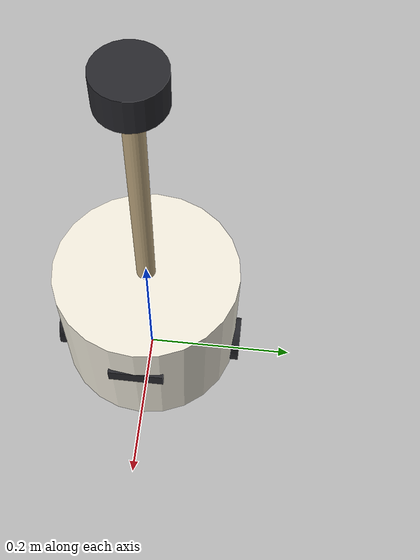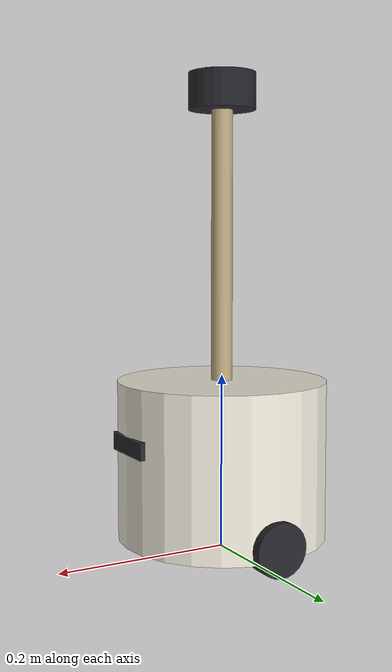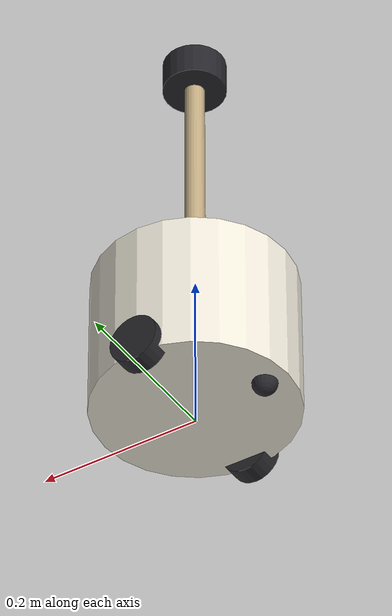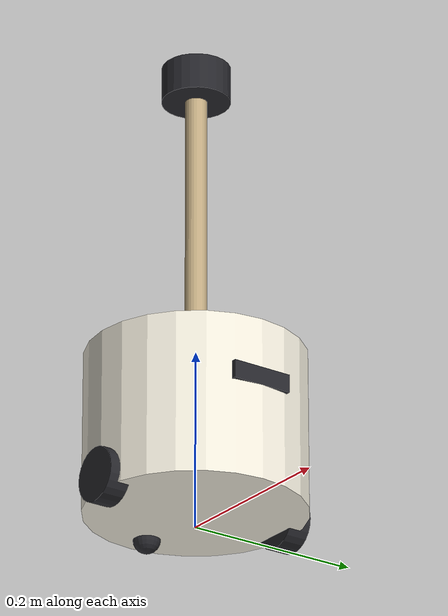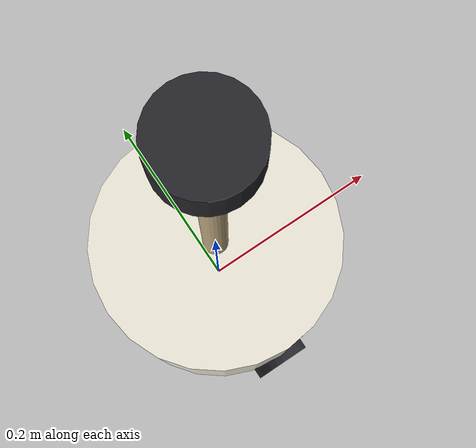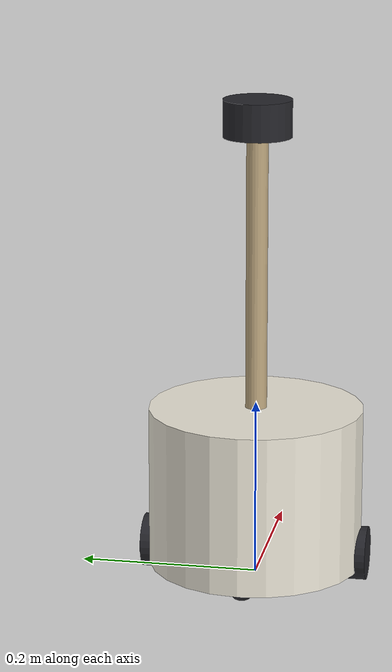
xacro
<?xml version="1.0"?>
<robot name="potner" xmlns:xacro="http://www.ros.org/wiki/xacro">

  <!-- ===== 실측 필요 (TODO) ===================================== -->
  <xacro:property name="wheel_diameter"    value="0.060"/>  <!-- 확정: 60mm 구동 바퀴 -->
  <xacro:property name="wheel_width"       value="0.025"/>  <!-- 실측 -->
  <!-- 바퀴가 실제로 붙어 있는 자리입니다. 오도메트리가 쓰는 값
       (potner_params.yaml 의 wheel_separation, 0.2179)과 다른 것이
       정상입니다 — 그쪽은 제자리 회전의 타이어 비빔까지 반영한
       실측 보정값이라 기하학적 거리보다 짧습니다. 두 값을 억지로
       맞추지 마세요. -->
  <xacro:property name="wheel_separation"  value="0.230"/>  <!-- 실측: 바깥면 25.5cm - 바퀴폭 2.5cm -->
  <xacro:property name="body_diameter"     value="0.240"/>  <!-- 본체 외경 -->
  <xacro:property name="body_height"       value="0.180"/>
  <xacro:property name="base_clearance"    value="0.015"/>  <!-- 섀시 바닥 높이 -->

  <!-- ★ LiDAR는 식물 위 폴 꼭대기에 있습니다. 이 높이가 정확해야
       스캔 데이터가 올바른 위치에 찍힙니다. 바닥부터 LiDAR 회전
       중심까지 재세요. -->
  <xacro:property name="lidar_height"      value="0.520"/>
  <xacro:property name="camera_height"     value="0.130"/>
  <xacro:property name="camera_forward"    value="0.110"/>
  <xacro:property name="bumper_height"     value="0.040"/>
  <xacro:property name="bumper_forward"    value="0.115"/>
  <xacro:property name="bumper_offset_y"   value="0.060"/>

  <xacro:property name="wheel_radius" value="${wheel_diameter / 2.0}"/>

  <material name="ivory"><color rgba="0.94 0.92 0.86 1.0"/></material>
  <material name="dark"> <color rgba="0.15 0.15 0.17 1.0"/></material>
  <material name="wood"> <color rgba="0.76 0.67 0.51 1.0"/></material>

  <!-- 바닥에 투영된 기준점. Nav2가 로봇의 발자국으로 삼습니다. -->
  <link name="base_footprint"/>

  <joint name="base_joint" type="fixed">
    <parent link="base_footprint"/>
    <child  link="base_link"/>
    <origin xyz="0 0 ${wheel_radius}" rpy="0 0 0"/>
  </joint>

  <!-- 로봇 본체. 오도메트리의 기준 좌표계입니다. -->
  <link name="base_link">
    <visual>
      <origin xyz="0 0 ${body_height/2 - wheel_radius + base_clearance}"/>
      <geometry><cylinder radius="${body_diameter/2}" length="${body_height}"/></geometry>
      <material name="ivory"/>
    </visual>
    <collision>
      <origin xyz="0 0 ${body_height/2 - wheel_radius + base_clearance}"/>
      <geometry><cylinder radius="${body_diameter/2}" length="${body_height}"/></geometry>
    </collision>
    <inertial>
      <mass value="3.0"/>  <!-- TODO: 완성 후 실측 -->
      <inertia ixx="0.02" ixy="0" ixz="0" iyy="0.02" iyz="0" izz="0.03"/>
    </inertial>
  </link>

  <!-- ===== 구동 바퀴 =========================================== -->
  <!-- base_driver 노드가 발행하는 joint_states 의 이름과 반드시 일치해야
       RViz에서 바퀴가 굴러가는 게 보입니다. -->
  <xacro:macro name="drive_wheel" params="side reflect">
    <link name="${side}_wheel_link">
      <visual>
        <origin rpy="${pi/2} 0 0"/>
        <geometry><cylinder radius="${wheel_radius}" length="${wheel_width}"/></geometry>
        <material name="dark"/>
      </visual>
      <collision>
        <origin rpy="${pi/2} 0 0"/>
        <geometry><cylinder radius="${wheel_radius}" length="${wheel_width}"/></geometry>
      </collision>
      <inertial>
        <mass value="0.2"/>
        <inertia ixx="0.0002" ixy="0" ixz="0" iyy="0.0002" iyz="0" izz="0.0003"/>
      </inertial>
    </link>

    <joint name="${side}_wheel_joint" type="continuous">
      <parent link="base_link"/>
      <child  link="${side}_wheel_link"/>
      <origin xyz="0 ${reflect * wheel_separation / 2} 0"/>
      <axis xyz="0 1 0"/>
    </joint>
  </xacro:macro>

  <xacro:drive_wheel side="left"  reflect="1"/>
  <xacro:drive_wheel side="right" reflect="-1"/>

  <!-- ===== 보조 바퀴(캐스터) ==================================== -->
  <!-- 캐스터는 1개(삼각 지지)를 권합니다. 앞뒤 2개면 바닥이 고르지
       않을 때 시소처럼 흔들리며 구동륜이 헛돌아 엔코더가 틀어집니다. -->
  <link name="caster_link">
    <visual>
      <geometry><sphere radius="${wheel_radius * 0.5}"/></geometry>
      <material name="dark"/>
    </visual>
    <collision>
      <geometry><sphere radius="${wheel_radius * 0.5}"/></geometry>
    </collision>
    <inertial>
      <mass value="0.05"/>
      <inertia ixx="1e-5" ixy="0" ixz="0" iyy="1e-5" iyz="0" izz="1e-5"/>
    </inertial>
  </link>

  <joint name="caster_joint" type="fixed">
    <parent link="base_link"/>
    <child  link="caster_link"/>
    <origin xyz="${-body_diameter/2 + 0.03} 0 ${-wheel_radius * 0.5}"/>
  </joint>

  <!-- ===== LiDAR (폴 위) ======================================= -->
  <link name="pole_link">
    <visual>
      <origin xyz="0 0 ${(lidar_height - wheel_radius) / 2}"/>
      <geometry><cylinder radius="0.012" length="${lidar_height - wheel_radius}"/></geometry>
      <material name="wood"/>
    </visual>
  </link>

  <joint name="pole_joint" type="fixed">
    <parent link="base_link"/>
    <child  link="pole_link"/>
    <origin xyz="0 0 0"/>
  </joint>

  <link name="laser_frame">
    <visual>
      <geometry><cylinder radius="0.038" length="0.041"/></geometry>
      <material name="dark"/>
    </visual>
  </link>

  <joint name="laser_joint" type="fixed">
    <parent link="base_link"/>
    <child  link="laser_frame"/>
    <origin xyz="0 0 ${lidar_height - wheel_radius}" rpy="0 0 0"/>
  </joint>

  <!-- ===== 카메라 ============================================== -->
  <link name="camera_link">
    <visual>
      <geometry><box size="0.020 0.070 0.020"/></geometry>
      <material name="dark"/>
    </visual>
  </link>

  <joint name="camera_joint" type="fixed">
    <parent link="base_link"/>
    <child  link="camera_link"/>
    <origin xyz="${camera_forward} 0 ${camera_height - wheel_radius}"/>
  </joint>

  <!-- 광학 좌표계. 영상 처리 쪽은 z가 앞을 보는 규약을 씁니다. -->
  <link name="camera_optical_frame"/>
  <joint name="camera_optical_joint" type="fixed">
    <parent link="camera_link"/>
    <child  link="camera_optical_frame"/>
    <origin rpy="${-pi/2} 0 ${-pi/2}"/>
  </joint>

  <!-- ===== 범퍼 ToF ============================================ -->
  <!-- LiDAR가 폴 위에 있어 스캔 평면 아래가 통째로 사각지대입니다.
       문턱과 슬리퍼를 보려면 낮은 곳에 눈이 하나 더 필요합니다. -->
  <xacro:macro name="bumper" params="side reflect">
    <link name="bumper_${side}_link"/>
    <joint name="bumper_${side}_joint" type="fixed">
      <parent link="base_link"/>
      <child  link="bumper_${side}_link"/>
      <origin xyz="${bumper_forward} ${reflect * bumper_offset_y} ${bumper_height - wheel_radius}"
              rpy="0 0 ${reflect * 0.35}"/>
    </joint>
  </xacro:macro>

  <xacro:bumper side="left"  reflect="1"/>
  <xacro:bumper side="right" reflect="-1"/>

</robot>
